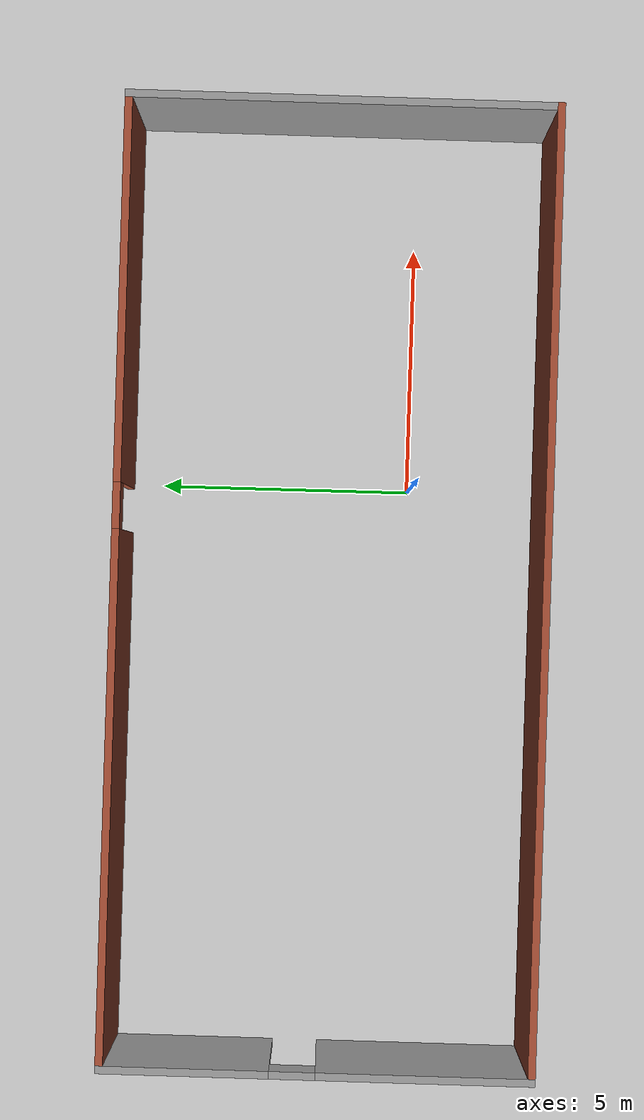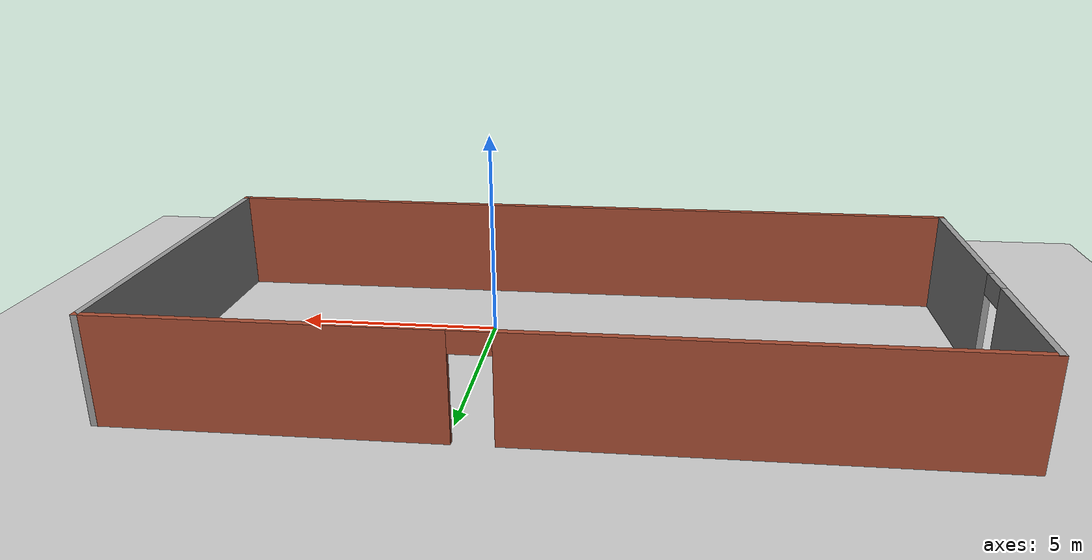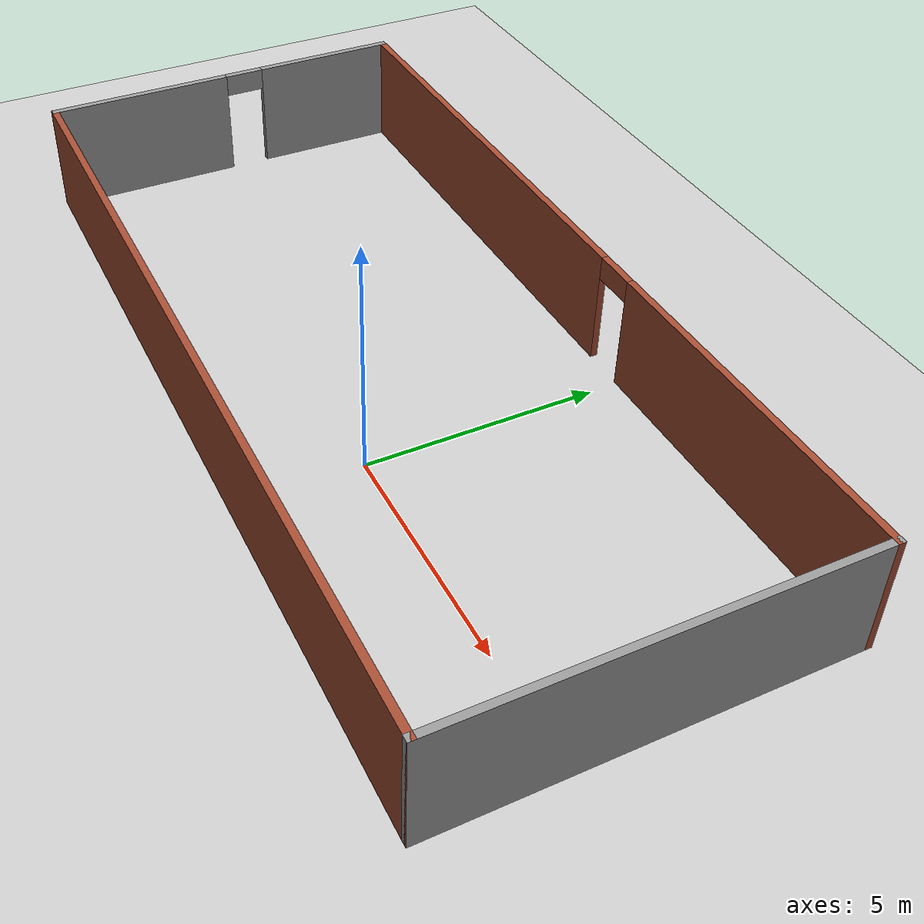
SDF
<sdf version="1.7">
 <world name="default">
  <light name="sun" type="directional">
   <pose>0 0 10 0 -0 0</pose>
   <diffuse>0.8 0.8 0.8 1</diffuse>
   <specular>0.2 0.2 0.2 1</specular>
   <attenuation>
    <range>1000</range>
    <constant>0.9</constant>
    <linear>0.01</linear>
    <quadratic>0.001</quadratic>
   </attenuation>
   <direction>-0.5 0.1 -0.9</direction>
   <spot><inner_angle>0</inner_angle><outer_angle>0</outer_angle><falloff>0</falloff></spot>
  </light>
  <model name="ground_plane">
   <static>1</static>
   <link name="link">
    <collision name="collision">
     <geometry><plane><normal>0 0 1</normal><size>100 100</size></plane></geometry>
     <surface>
      <contact><collide_bitmask>65535</collide_bitmask></contact>
      <friction><ode><mu>100</mu><mu2>50</mu2></ode></friction>
     </surface>
    </collision>
    <visual name="visual">
     <cast_shadows>0</cast_shadows>
     <geometry><plane><normal>0 0 1</normal><size>100 100</size></plane></geometry>
     <material>
      <script><uri>file://media/materials/scripts/gazebo.material</uri><name>Gazebo/Grey</name></script>
     </material>
    </visual>
   </link>
  </model>
  <gravity>0 0 -9.8</gravity>
  <magnetic_field>6e-06 2.3e-05 -4.2e-05</magnetic_field>
  <atmosphere type="adiabatic"/>
  <physics type="ode">
   <max_step_size>0.001</max_step_size>
   <real_time_factor>1</real_time_factor>
   <real_time_update_rate>1000</real_time_update_rate>
  </physics>
  <scene><ambient>0.4 0.4 0.4 1</ambient><background>0.7 0.7 0.7 1</background><shadows>1</shadows></scene>
  <audio><device>default</device></audio>
  <spherical_coordinates>
   <surface_model>EARTH_WGS84</surface_model>
   <latitude_deg>0</latitude_deg>
   <longitude_deg>0</longitude_deg>
   <elevation>0</elevation>
   <heading_deg>0</heading_deg>
  </spherical_coordinates>
  <model name="test">
   <pose>-2.0049 1.51358 0 0 -0 0</pose>
   <link name="Wall_4">
    <pose>-9.425 -0 0 0 -0 -1.5708</pose>
    <visual name="Wall_4_Visual_0">
     <pose>-2.57549 0 1.25 0 -0 0</pose>
     <geometry><box><size>3.34903 0.15 2.5</size></box></geometry>
     <material>
      <script><uri>file://media/materials/scripts/gazebo.material</uri><name>Gazebo/Grey</name></script>
      <ambient>1 1 1 1</ambient>
     </material>
     <meta><layer>0</layer></meta>
    </visual>
    <collision name="Wall_4_Collision_0">
     <geometry><box><size>3.34903 0.15 2.5</size></box></geometry>
     <pose>-2.57549 0 1.25 0 -0 0</pose>
    </collision>
    <visual name="Wall_4_Visual_1">
     <pose>2.12451 0 1.25 0 -0 0</pose>
     <geometry><box><size>4.25097 0.15 2.5</size></box></geometry>
     <material>
      <script><uri>file://media/materials/scripts/gazebo.material</uri><name>Gazebo/Grey</name></script>
      <ambient>1 1 1 1</ambient>
     </material>
     <meta><layer>0</layer></meta>
    </visual>
    <collision name="Wall_4_Collision_1">
     <geometry><box><size>4.25097 0.15 2.5</size></box></geometry>
     <pose>2.12451 0 1.25 0 -0 0</pose>
    </collision>
    <visual name="Wall_4_Visual_2">
     <pose>-0.450972 0 2.25 0 -0 0</pose>
     <geometry><box><size>0.9 0.15 0.5</size></box></geometry>
     <material>
      <script><uri>file://media/materials/scripts/gazebo.material</uri><name>Gazebo/Grey</name></script>
      <ambient>1 1 1 1</ambient>
     </material>
     <meta><layer>0</layer></meta>
    </visual>
    <collision name="Wall_4_Collision_2">
     <geometry><box><size>0.9 0.15 0.5</size></box></geometry>
     <pose>-0.450972 0 2.25 0 -0 0</pose>
    </collision>
   </link>
   <link name="Wall_5">
    <collision name="Wall_5_Collision">
     <geometry><box><size>19 0.15 2.5</size></box></geometry>
     <pose>0 0 1.25 0 -0 0</pose>
    </collision>
    <visual name="Wall_5_Visual">
     <pose>0 0 1.25 0 -0 0</pose>
     <geometry><box><size>19 0.15 2.5</size></box></geometry>
     <material>
      <script><uri>file://media/materials/scripts/gazebo.material</uri><name>Gazebo/Bricks</name></script>
      <ambient>1 1 1 1</ambient>
     </material>
     <meta><layer>0</layer></meta>
    </visual>
    <pose>0 -4.175 0 0 -0 0</pose>
   </link>
   <link name="Wall_6">
    <collision name="Wall_6_Collision">
     <geometry><box><size>8.5 0.15 2.5</size></box></geometry>
     <pose>0 0 1.25 0 -0 0</pose>
    </collision>
    <visual name="Wall_6_Visual">
     <pose>0 0 1.25 0 -0 0</pose>
     <geometry><box><size>8.5 0.15 2.5</size></box></geometry>
     <material>
      <script><uri>file://media/materials/scripts/gazebo.material</uri><name>Gazebo/Grey</name></script>
      <ambient>1 1 1 1</ambient>
     </material>
     <meta><layer>0</layer></meta>
    </visual>
    <pose>9.425 -0 0 0 -0 1.5708</pose>
   </link>
   <link name="Wall_7">
    <pose>0 4.175 0 0 -0 3.14159</pose>
    <visual name="Wall_7_Visual_0">
     <pose>-5.70976 0 1.25 0 -0 0</pose>
     <geometry><box><size>7.58048 0.15 2.5</size></box></geometry>
     <material>
      <script><uri>file://media/materials/scripts/gazebo.material</uri><name>Gazebo/Bricks</name></script>
      <ambient>1 1 1 1</ambient>
     </material>
     <meta><layer>0</layer></meta>
    </visual>
    <collision name="Wall_7_Collision_0">
     <geometry><box><size>7.58048 0.15 2.5</size></box></geometry>
     <pose>-5.70976 0 1.25 0 -0 0</pose>
    </collision>
    <visual name="Wall_7_Visual_1">
     <pose>4.24024 0 1.25 0 -0 0</pose>
     <geometry><box><size>10.5195 0.15 2.5</size></box></geometry>
     <material>
      <script><uri>file://media/materials/scripts/gazebo.material</uri><name>Gazebo/Bricks</name></script>
      <ambient>1 1 1 1</ambient>
     </material>
     <meta><layer>0</layer></meta>
    </visual>
    <collision name="Wall_7_Collision_1">
     <geometry><box><size>10.5195 0.15 2.5</size></box></geometry>
     <pose>4.24024 0 1.25 0 -0 0</pose>
    </collision>
    <visual name="Wall_7_Visual_2">
     <pose>-1.46952 0 2.25 0 -0 0</pose>
     <geometry><box><size>0.9 0.15 0.5</size></box></geometry>
     <material>
      <script><uri>file://media/materials/scripts/gazebo.material</uri><name>Gazebo/Bricks</name></script>
      <ambient>1 1 1 1</ambient>
     </material>
     <meta><layer>0</layer></meta>
    </visual>
    <collision name="Wall_7_Collision_2">
     <geometry><box><size>0.9 0.15 0.5</size></box></geometry>
     <pose>-1.46952 0 2.25 0 -0 0</pose>
    </collision>
   </link>
   <static>1</static>
  </model>
 </world>
</sdf>
